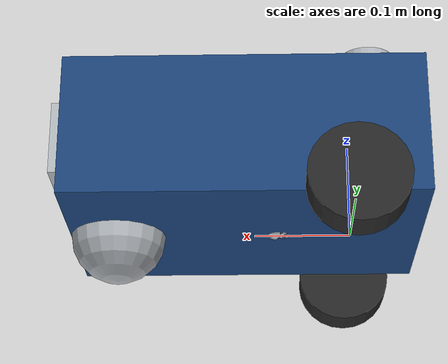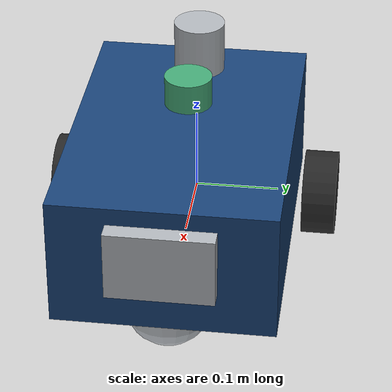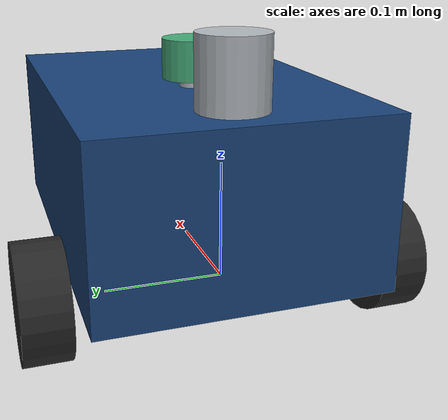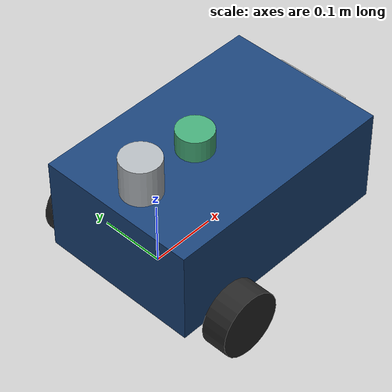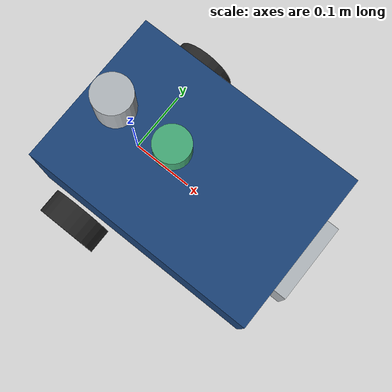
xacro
<?xml version="1.0"?>
<robot xmlns:xacro="http://www.ros.org/wiki/xacro" name="mserve_robot">

  <!-- Include the core robot definition -->
  <xacro:include filename="mserve_core.xacro"/>

  <xacro:include filename="mserve_camera.xacro"/>
  <xacro:mserve_camera parent_link="chassis"/>

  <!-- Include Lidar -->
  <xacro:include filename="mserve_lidar.xacro"/>
  <xacro:mserve_lidar parent_link="chassis"/>

  <!-- Include Gazebo-specific simulation tuning -->
  <xacro:include filename="mserve_gazebo.xacro"/>

</robot>

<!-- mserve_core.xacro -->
<robot xmlns:xacro="http://www.ros.org/wiki/xacro">
  <xacro:include filename="inertial_macros.xacro"/>

    <!-- Chassis Properties (in meteres, kG) -->
  <xacro:property name="chassis_length" value="0.37"/>
  <xacro:property name="chassis_width" value="0.25"/>
  <xacro:property name="chassis_height" value="0.15"/>
  <xacro:property name="chassis_mass" value="12.0"/>
  <xacro:property name="chassis_joint_x" value="-0.075"/>

     <!-- Wheel Properties (in meteres)  -->
  <xacro:property name="wheel_radius" value="0.05035"/>  <!-- measured 2026-07-19: 100.7mm diameter -->
  <xacro:property name="wheel_width" value="0.04"/>
  <xacro:property name="wheel_mass" value="0.765"/>
  <xacro:property name="wheel_separation" value="0.305"/>
  <xacro:property name="wheel_y_offset" value="${wheel_separation / 2.0}"/>
  <xacro:property name="wheel_no_load_rpm" value="200.0"/>
  <xacro:property name="wheel_rated_rpm" value="115.0"/>
  <xacro:property name="wheel_rated_torque" value="0.96"/>
  <xacro:property name="wheel_stall_torque" value="2.0"/>
  <xacro:property name="wheel_torque_constant" value="0.75"/>
  <xacro:property name="wheel_speed_constant_rpm_per_volt" value="11.1"/>
  <xacro:property name="wheel_encoder_resolution" value="4096"/>
  <xacro:property name="wheel_single_wheel_load" value="10.0"/>
  <xacro:property name="wheel_velocity_limit" value="${wheel_no_load_rpm * 2.0 * pi / 60.0}"/>
  <xacro:property name="wheel_rated_velocity" value="${wheel_rated_rpm * 2.0 * pi / 60.0}"/>
  <xacro:property name="wheel_effort_limit" value="${wheel_stall_torque}"/>
  <xacro:property name="wheel_joint_damping" value="0.05"/>
  <xacro:property name="wheel_joint_friction" value="0.02"/>

  <!-- Caster Properties (in meteres)  -->
  <xacro:property name="caster_radius" value="0.05"/>
  <xacro:property name="caster_mass" value="0.3"/>
  <xacro:property name="caster_offset" value="0.00"/>
  <xacro:property name="caster_x" value="${(chassis_length - caster_radius - caster_offset)}"/>
  <xacro:property name="caster_z" value="0"/>

  <!-- Display Properties (in meteres)  -->
  <xacro:property name="display_width" value="0.12"/>
  <xacro:property name="display_depth" value="0.02"/>
  <xacro:property name="display_height" value="0.08"/>
  <xacro:property name="display_mass" value="0.25"/>
  <xacro:property name="display_offset" value="0.05"/>
  <xacro:property name="display_x" value="${chassis_length + display_depth / 2.0}"/>
  <xacro:property name="display_y" value="0.0"/>
  <xacro:property name="display_z" value="${display_height / 2.0 + display_offset}"/>

  <!-- Arm Mount Properties (in meteres, kG) -->
  <xacro:property name="arm_mount_radius" value="0.03"/>
  <xacro:property name="arm_mount_length" value="0.06"/>
  <xacro:property name="arm_mount_mass" value="0.4"/>
  <xacro:property name="arm_mount_offset" value="0.05"/>
  <xacro:property name="arm_mount_x" value="${arm_mount_offset}"/>
  <xacro:property name="arm_mount_y" value="0.0"/>
  <xacro:property name="arm_mount_z" value="${chassis_height + arm_mount_length / 2.0}"/>

  <!-- Materials -->
  <material name="chassis_blue">
    <color rgba="0.10 0.26 0.47 1.0"/>
  </material>

  <material name="trim_grey">
    <color rgba="0.70 0.72 0.74 1.0"/>
  </material>

  <material name="wheel_black">
    <color rgba="0.15 0.15 0.15 1.0"/>
  </material>

  <!-- BASE LINK -->
  <link name="base_link"/>

  <!-- CHASSIS LINK -->
  <joint name="chassis_joint" type="fixed">
    <parent link="base_link"/>
    <child link="chassis"/>
    <origin xyz="${chassis_joint_x} 0 0" rpy="0 0 0"/>
  </joint>

  <link name="chassis">
    <visual>
      <origin xyz="${chassis_length / 2.0} 0 ${chassis_height / 2.0}" rpy="0 0 0"/>
      <geometry>
        <box size="${chassis_length} ${chassis_width} ${chassis_height}"/>
      </geometry>
      <material name="chassis_blue"/>
    </visual>
    <collision>
      <origin xyz="${chassis_length / 2.0} 0 ${chassis_height / 2.0}" rpy="0 0 0"/>
      <geometry>
        <box size="${chassis_length} ${chassis_width} ${chassis_height}"/>
      </geometry>
    </collision>
    <xacro:inertial_box
      mass="${chassis_mass}"
      x="${chassis_length}"
      y="${chassis_width}"
      z="${chassis_height}"
      origin_xyz="${chassis_length / 2.0} 0 ${chassis_height / 2.0}"
      origin_rpy="0 0 0"/>
  </link>

  <!-- LEFT WHEEL JOINT -->
  <joint name="left_wheel_joint" type="continuous">
    <parent link="base_link"/>
    <child link="left_wheel"/>
    <origin xyz="0 ${wheel_y_offset} 0" rpy="${-pi / 2.0} 0 0"/>
    <axis xyz="0 0 1"/>
    <limit effort="${wheel_effort_limit}" velocity="${wheel_velocity_limit}"/>
    <dynamics damping="${wheel_joint_damping}" friction="${wheel_joint_friction}"/>
  </joint>

  <link name="left_wheel">
    <visual>
      <geometry>
        <cylinder radius="${wheel_radius}" length="${wheel_width}"/>
      </geometry>
      <material name="wheel_black"/>
    </visual>
    <collision>
      <geometry>
        <cylinder radius="${wheel_radius}" length="${wheel_width}"/>
      </geometry>
    </collision>
    <xacro:inertial_cylinder
      mass="${wheel_mass}"
      radius="${wheel_radius}"
      length="${wheel_width}"
      origin_xyz="0 0 0"
      origin_rpy="0 0 0"/>
  </link>

  <!-- RIGHT WHEEL JOINT -->
  <joint name="right_wheel_joint" type="continuous">
    <parent link="base_link"/>
    <child link="right_wheel"/>
    <origin xyz="0 ${-wheel_y_offset} 0" rpy="${pi / 2.0} 0 0"/>
    <axis xyz="0 0 -1"/>
    <limit effort="${wheel_effort_limit}" velocity="${wheel_velocity_limit}"/>
    <dynamics damping="${wheel_joint_damping}" friction="${wheel_joint_friction}"/>
  </joint>

  <link name="right_wheel">
    <visual>
      <geometry>
        <cylinder radius="${wheel_radius}" length="${wheel_width}"/>
      </geometry>
      <material name="wheel_black"/>
    </visual>
    <collision>
      <geometry>
        <cylinder radius="${wheel_radius}" length="${wheel_width}"/>
      </geometry>
    </collision>
    <xacro:inertial_cylinder
      mass="${wheel_mass}"
      radius="${wheel_radius}"
      length="${wheel_width}"
      origin_xyz="0 0 0"
      origin_rpy="0 0 0"/>
  </link>

  <!-- CASTER WHEEL JOINT -->
  <joint name="caster_wheel_joint" type="fixed">
    <parent link="chassis"/>
    <child link="caster_wheel"/>
    <origin xyz="${caster_x} 0 ${caster_z}" rpy="0 0 0"/>
  </joint>

  <link name="caster_wheel">
    <visual>
      <geometry>
        <sphere radius="${caster_radius}"/>
      </geometry>
      <material name="trim_grey"/>
    </visual>
    <collision>
      <geometry>
        <sphere radius="${caster_radius}"/>
      </geometry>
    </collision>
    <xacro:inertial_sphere
      mass="${caster_mass}"
      radius="${caster_radius}"
      origin_xyz="0 0 0"
      origin_rpy="0 0 0"/>
  </link>

  <!-- DISPLAY JOINT -->
  <joint name="display_joint" type="fixed">
    <parent link="chassis"/>
    <child link="display_link"/>
    <origin xyz="${display_x} ${display_y} ${display_z}" rpy="0 0 0"/>
  </joint>

  <link name="display_link">
    <visual>
      <geometry>
       <box size="${display_depth} ${display_width} ${display_height}"/>
    </geometry>
      <material name="trim_grey"/>
    </visual>
  </link>

  <!-- ARM MOUNT JOINT -->
  <joint name="arm_mount_joint" type="fixed">
    <parent link="chassis"/>
    <child link="arm_mount_link"/>
    <origin xyz="${arm_mount_x} ${arm_mount_y} ${arm_mount_z}" rpy="0 0 0"/>
  </joint>

  <link name="arm_mount_link">
    <visual>
      <geometry>
        <cylinder radius="${arm_mount_radius}" length="${arm_mount_length}"/>
      </geometry>
      <material name="trim_grey"/>
    </visual>
    <collision>
      <geometry>
        <cylinder radius="${arm_mount_radius}" length="${arm_mount_length}"/>
      </geometry>
    </collision>
    <xacro:inertial_cylinder
      mass="${arm_mount_mass}"
      radius="${arm_mount_radius}"
      length="${arm_mount_length}"
      origin_xyz="0 0 0"
      origin_rpy="0 0 0"/>
  </link>
</robot>

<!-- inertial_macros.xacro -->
<robot xmlns:xacro="http://www.ros.org/wiki/xacro">
  <xacro:macro name="inertial_box" params="mass x y z origin_xyz origin_rpy">
    <inertial>
      <origin xyz="${origin_xyz}" rpy="${origin_rpy}"/>
      <mass value="${mass}"/>
      <inertia
        ixx="${(mass / 12.0) * (y * y + z * z)}"
        ixy="0.0"
        ixz="0.0"
        iyy="${(mass / 12.0) * (x * x + z * z)}"
        iyz="0.0"
        izz="${(mass / 12.0) * (x * x + y * y)}"/>
    </inertial>
  </xacro:macro>

  <xacro:macro name="inertial_cylinder" params="mass radius length origin_xyz origin_rpy">
    <inertial>
      <origin xyz="${origin_xyz}" rpy="${origin_rpy}"/>
      <mass value="${mass}"/>
      <inertia
        ixx="${(mass / 12.0) * (3.0 * radius * radius + length * length)}"
        ixy="0.0"
        ixz="0.0"
        iyy="${(mass / 12.0) * (3.0 * radius * radius + length * length)}"
        iyz="0.0"
        izz="${0.5 * mass * radius * radius}"/>
    </inertial>
  </xacro:macro>

  <xacro:macro name="inertial_sphere" params="mass radius origin_xyz origin_rpy">
    <inertial>
      <origin xyz="${origin_xyz}" rpy="${origin_rpy}"/>
      <mass value="${mass}"/>
      <xacro:property name="sphere_inertia" value="${0.4 * mass * radius * radius}"/>
      <inertia
        ixx="${sphere_inertia}"
        ixy="0.0"
        ixz="0.0"
        iyy="${sphere_inertia}"
        iyz="0.0"
        izz="${sphere_inertia}"/>
    </inertial>
  </xacro:macro>
</robot>

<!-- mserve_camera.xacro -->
<robot xmlns:xacro="http://www.ros.org/wiki/xacro">
  <xacro:include filename="inertial_macros.xacro"/>

  <xacro:property name="camera_depth" value="0.0115"/>
  <xacro:property name="camera_width" value="0.080"/>
  <xacro:property name="camera_height" value="0.030"/>
  <xacro:property name="camera_mass" value="0.005"/>
  <xacro:property name="camera_x_from_wheel_axis" value="0.280"/>
  <xacro:property name="camera_x" value="${camera_x_from_wheel_axis - chassis_joint_x}"/>
  <xacro:property name="camera_y" value="0.0"/>
  <xacro:property name="camera_z" value="0.115"/>

  <xacro:property name="camera_image_topic" value="camera/image_raw"/>
  <xacro:property name="camera_info_topic" value="camera/camera_info"/>
  <xacro:property name="camera_update_rate" value="30.0"/>
  <xacro:property name="camera_horizontal_fov" value="1.1789332498235952"/>
  <xacro:property name="camera_image_width" value="1280"/>
  <xacro:property name="camera_image_height" value="720"/>
  <xacro:property name="camera_clip_near" value="0.05"/>
  <xacro:property name="camera_clip_far" value="12.0"/>

  <xacro:macro name="mserve_camera" params="parent_link:='chassis'">
    <joint name="camera_joint" type="fixed">
      <parent link="${parent_link}"/>
      <child link="camera_link"/>
      <origin xyz="${camera_x} ${camera_y} ${camera_z}" rpy="0 0 0"/>
    </joint>

    <link name="camera_link">
      <visual>
        <origin xyz="0 0 0" rpy="0 0 0"/>
        <geometry>
          <box size="${camera_depth} ${camera_width} ${camera_height}"/>
        </geometry>
        <material name="trim_grey"/>
      </visual>
      <collision>
        <origin xyz="0 0 0" rpy="0 0 0"/>
        <geometry>
          <box size="${camera_depth} ${camera_width} ${camera_height}"/>
        </geometry>
      </collision>
      <xacro:inertial_box
        mass="${camera_mass}"
        x="${camera_depth}"
        y="${camera_width}"
        z="${camera_height}"
        origin_xyz="0 0 0"
        origin_rpy="0 0 0"/>
    </link>

    <!-- Optical frame for REP-103 camera consumers -->
    <joint name="camera_optical_joint" type="fixed">
      <parent link="camera_link"/>
      <child link="camera_link_optical"/>
      <origin xyz="0 0 0" rpy="${-pi / 2.0} 0 ${-pi / 2.0}"/>
    </joint>

    <link name="camera_link_optical"/>

    <gazebo reference="camera_link">
      <sensor name="pi_camera_module_3" type="camera">
        <pose>0 0 0 0 0 0</pose>
        <topic>${camera_image_topic}</topic>
        <always_on>true</always_on>
        <update_rate>${camera_update_rate}</update_rate>
        <visualize>true</visualize>
        <gz_frame_id>camera_link_optical</gz_frame_id>
        <camera name="camera_sensor">
          <camera_info_topic>${camera_info_topic}</camera_info_topic>
          <horizontal_fov>${camera_horizontal_fov}</horizontal_fov>
          <image>
            <format>R8G8B8</format>
            <width>${camera_image_width}</width>
            <height>${camera_image_height}</height>
          </image>
          <clip>
            <near>${camera_clip_near}</near>
            <far>${camera_clip_far}</far>
          </clip>
        </camera>
      </sensor>
    </gazebo>
  </xacro:macro>
</robot>

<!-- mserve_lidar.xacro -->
<robot xmlns:xacro="http://www.ros.org/wiki/xacro">

  <xacro:property name="lidar_radius" value="0.0275"/>
  <xacro:property name="lidar_length" value="0.035"/>
  <xacro:property name="lidar_mass" value="0.11"/>
  <xacro:property name="lidar_riser_radius" value="0.012"/>
  <xacro:property name="lidar_x_from_wheel_axis" value="0.075"/>
  <xacro:property name="lidar_x" value="${lidar_x_from_wheel_axis - chassis_joint_x}"/>
  <xacro:property name="lidar_y" value="0.0"/>
  <xacro:property name="lidar_riser_mass" value="0.03"/>
  <xacro:property name="lidar_riser_height" value="${0.175 - lidar_length / 2.0}"/>
  <xacro:property name="lidar_riser_z" value="${lidar_riser_height / 2.0}"/>
  <xacro:property name="lidar_z" value="${lidar_riser_height / 2.0 + lidar_length / 2.0}"/>
  <xacro:property name="lidar_scan_topic" value="scan"/>
  <xacro:property name="lidar_update_rate" value="10.0"/>
  <xacro:property name="lidar_horizontal_samples" value="500"/>
  <xacro:property name="lidar_min_angle" value="${-pi}"/>
  <xacro:property name="lidar_max_angle" value="${pi}"/>
  <xacro:property name="lidar_min_range" value="0.05"/>
  <xacro:property name="lidar_max_range" value="12.0"/>
  <xacro:property name="lidar_range_resolution" value="0.015"/>

  <material name="sensor_green">
    <color rgba="0.27 0.67 0.47 1.0"/>
  </material>

  <xacro:macro name="mserve_lidar" params="parent_link:='chassis'">
    <joint name="lidar_riser_joint" type="fixed">
      <parent link="${parent_link}"/>
      <child link="lidar_riser_link"/>
      <origin xyz="${lidar_x} ${lidar_y} ${lidar_riser_z}" rpy="0 0 0"/>
    </joint>

    <link name="lidar_riser_link">
      <visual>
        <geometry>
          <cylinder radius="${lidar_riser_radius}" length="${lidar_riser_height}"/>
        </geometry>
        <material name="trim_grey"/>
      </visual>
      <collision>
        <geometry>
          <cylinder radius="${lidar_riser_radius}" length="${lidar_riser_height}"/>
        </geometry>
      </collision>
      <xacro:inertial_cylinder
        mass="${lidar_riser_mass}"
        radius="${lidar_riser_radius}"
        length="${lidar_riser_height}"
        origin_xyz="0 0 0"
        origin_rpy="0 0 0"/>
    </link>

    <joint name="lidar_joint" type="fixed">
      <parent link="lidar_riser_link"/>
      <child link="lidar_link"/>
      <origin xyz="0 0 ${lidar_z}" rpy="0 0 0"/>
    </joint>

    <link name="lidar_link">
      <visual>
        <geometry>
          <cylinder radius="${lidar_radius}" length="${lidar_length}"/>
        </geometry>
        <material name="sensor_green"/>
      </visual>
      <collision>
        <geometry>
          <cylinder radius="${lidar_radius}" length="${lidar_length}"/>
        </geometry>
      </collision>
      <xacro:inertial_cylinder
        mass="${lidar_mass}"
        radius="${lidar_radius}"
        length="${lidar_length}"
        origin_xyz="0 0 0"
        origin_rpy="0 0 0"/>
    </link>

    <gazebo reference="lidar_link">
      <sensor name="rplidar_c1" type="gpu_lidar">
        <pose>0 0 0 0 0 0</pose>
        <topic>${lidar_scan_topic}</topic>
        <update_rate>${lidar_update_rate}</update_rate>
        <always_on>true</always_on>
        <visualize>true</visualize>
        <gz_frame_id>lidar_link</gz_frame_id>
        <ray>
          <scan>
            <horizontal>
              <samples>${lidar_horizontal_samples}</samples>
              <resolution>1</resolution>
              <min_angle>${lidar_min_angle}</min_angle>
              <max_angle>${lidar_max_angle}</max_angle>
            </horizontal>
            <vertical>
              <samples>1</samples>
              <resolution>1</resolution>
              <min_angle>0</min_angle>
              <max_angle>0</max_angle>
            </vertical>
          </scan>
          <range>
            <min>${lidar_min_range}</min>
            <max>${lidar_max_range}</max>
            <resolution>${lidar_range_resolution}</resolution>
          </range>
        </ray>
      </sensor>
    </gazebo>
  </xacro:macro>
</robot>
